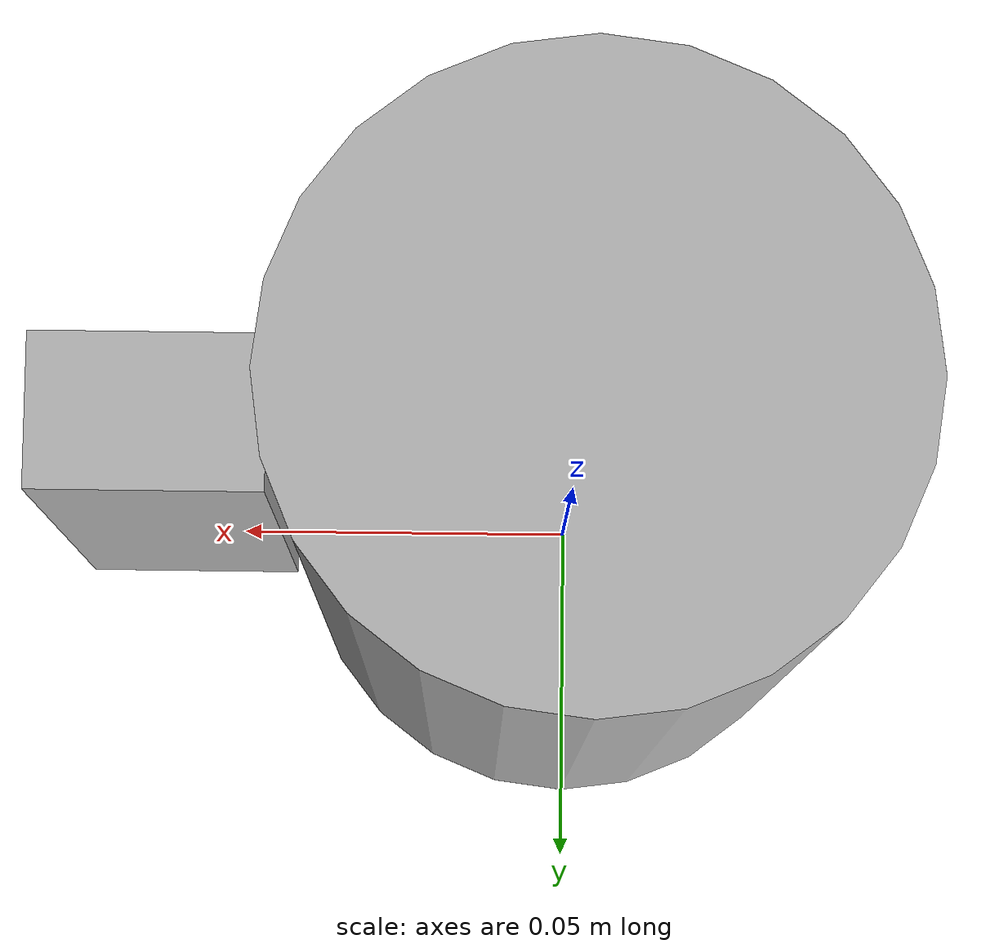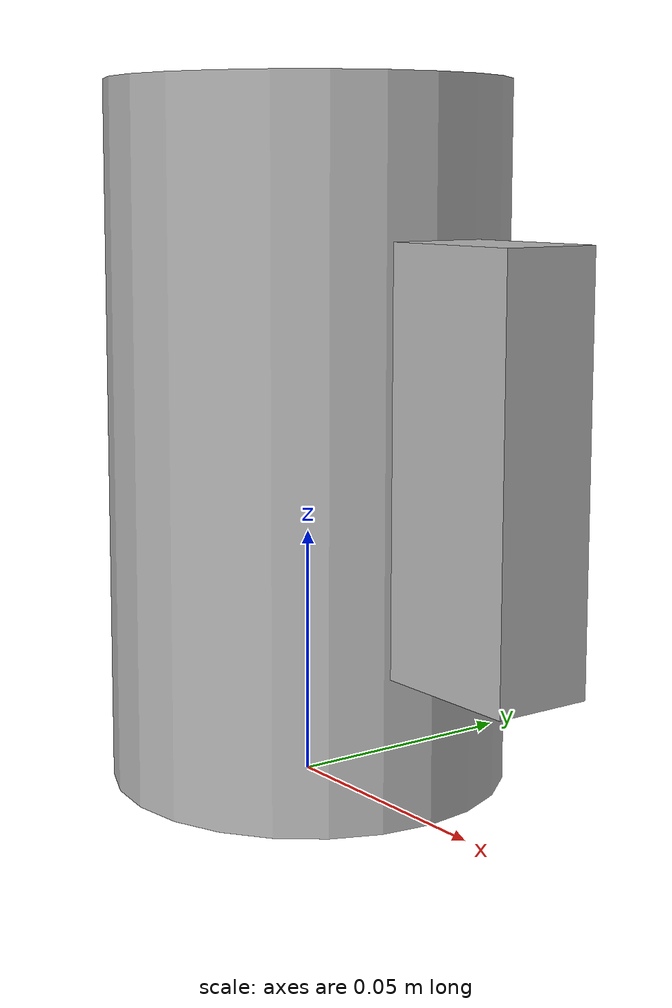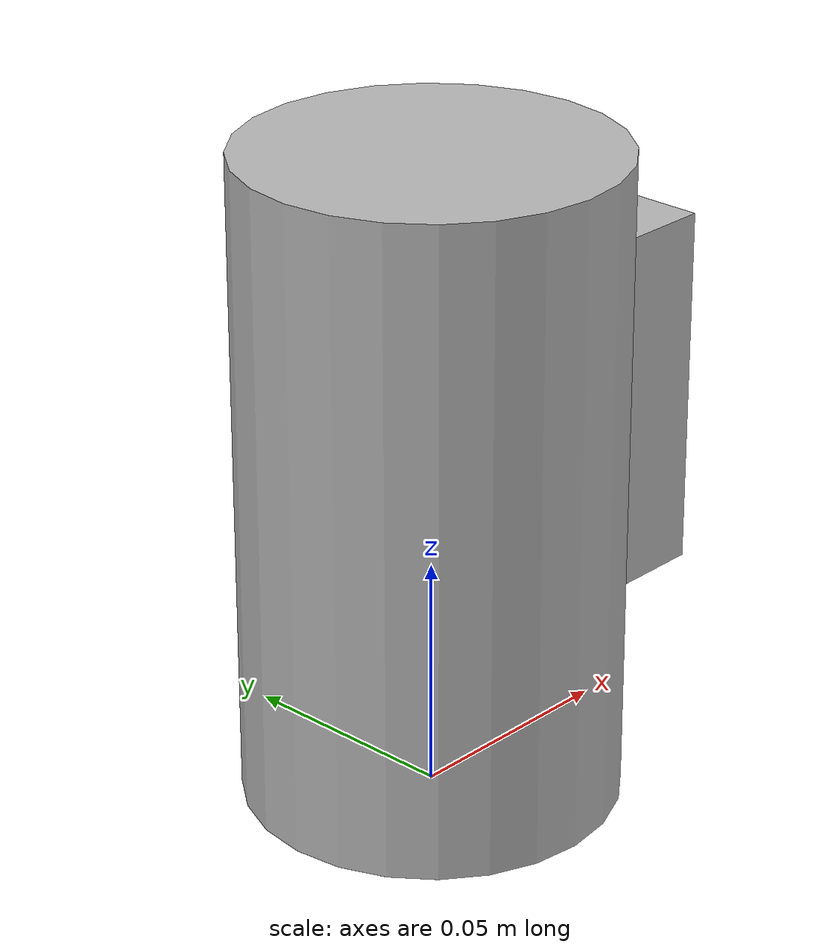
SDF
<sdf version='1.6'>
  <model name='simple_mug2'>
    <link name='main_body2'>
      <pose frame=''>0 0 0 0 -0 0</pose>
      <inertial>
        <pose frame=''>0.01 0 0.05 0 -0 0</pose>
        <mass>0.094</mass>
        <inertia>
          <ixx>0.000156</ixx>
          <ixy>0</ixy>
          <ixz>0</ixz>
          <iyy>0.000156</iyy>
          <iyz>0</iyz>
          <izz>0.00015</izz>
        </inertia>
      </inertial>
      <collision name='main_body_collision'>
        <pose frame=''>0 0 0.07 0 -0 0</pose>
        <geometry>
          <cylinder>
            <length>0.14</length>
            <radius>0.04</radius>
          </cylinder>
        </geometry>

        <surface>
          <friction>
            <ode>
              <mu>0.9</mu>
              <mu2>0.5</mu2>
            </ode>
          </friction>
        </surface>
      </collision>
      <collision name='mug_handle_collision'>
        <pose frame=''>0.055 0 0.07 0 -0 0</pose>
          <geometry>
            <box>
              <size>0.03 0.02 0.08</size>
            </box>
          </geometry>
      </collision>

      <visual name='main_body_visual'>
        <pose frame=''>0 0 0.07 0 -0 0</pose>
        <geometry>
          <cylinder>
            <length>0.14</length>
            <radius>0.04</radius>
          </cylinder>
        </geometry>
      </visual>
      <visual name='mug_handle_visual'>
        <pose frame=''>0.055 0 0.07 0 -0 0</pose>
        <geometry>
          <box>
            <size>0.03 0.02 0.08</size>
          </box>
        </geometry>
      </visual>
    </link>
  </model>
</sdf>
